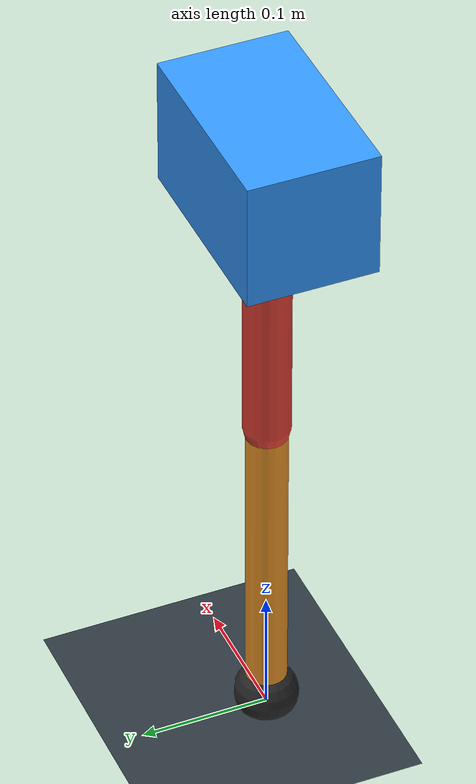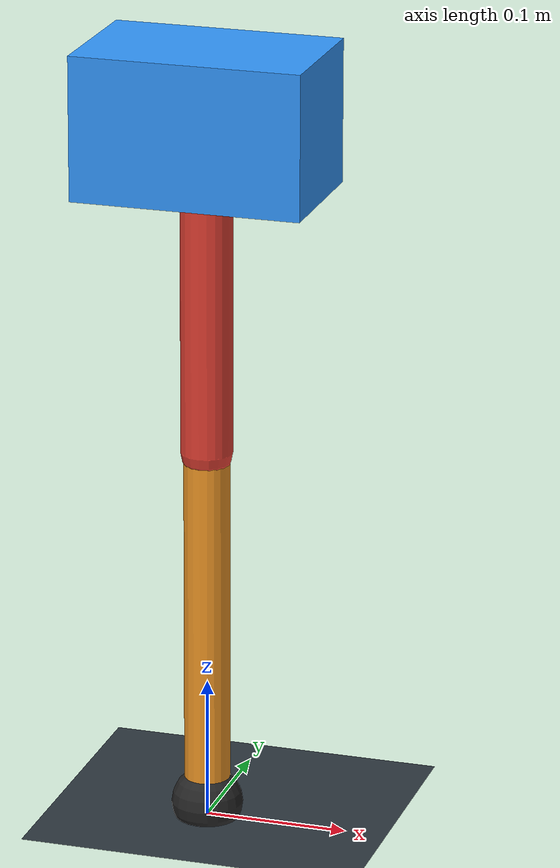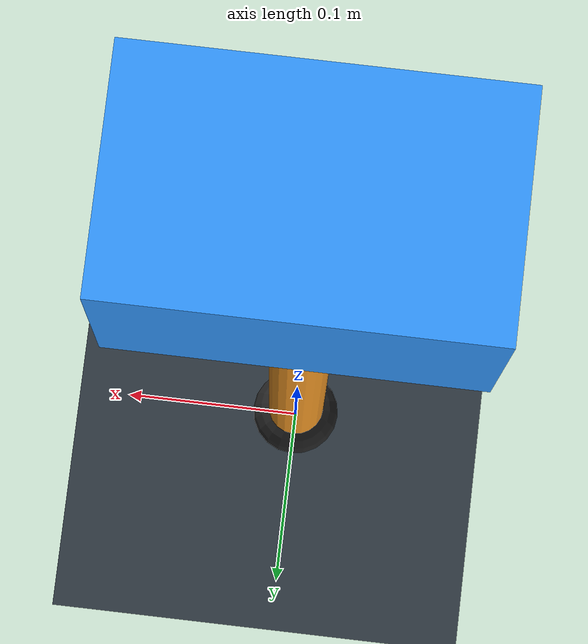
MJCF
<mujoco model="single_axis_two_bar">
  <compiler angle="radian" inertiafromgeom="true"/>
  <option timestep="0.001" integrator="implicitfast" gravity="0 0 -9.81"/>
  <default>
    <joint damping="0.08"/>
    <geom friction="1.2 0.01 0.0001" condim="3"/>
  </default>
  <worldbody>
    <geom name="floor" type="plane" size="5 5 0.1" rgba="0.18 0.22 0.25 1"/>
    <body name="carriage" pos="0 0 0.5029515049212709">
      <joint name="pole_slide" type="slide" axis="0 0 1"/>
      <geom name="payload" type="box" size="0.08 0.05 0.05" mass="3.1322426838175437" rgba="0.2 0.6 1 1"/>
      <body name="thigh" pos="0 0 0">
        <joint name="hip" type="hinge" axis="0 1 0"/>
        <geom name="thigh_link" type="capsule" fromto="0 0 0 0 0 -0.23465654140739917" size="0.018" mass="0.16719588646539582" rgba="0.9 0.25 0.2 1"/>
        <body name="shank" pos="0 0 -0.23465654140739917">
          <joint name="knee" type="hinge" axis="0 1 0"/>
          <geom name="shank_link" type="capsule" fromto="0 0 0 0 0 -0.2580769688207152" size="0.016" mass="0.18388325047102735" rgba="0.95 0.6 0.15 1"/>
          <geom name="foot" type="sphere" pos="0 0 -0.2580769688207152" size="0.025" mass="0.03" rgba="0.15 0.15 0.15 1"/>
          <site name="toe" pos="0 0 -0.2580769688207152" size="0.008"/>
        </body>
      </body>
    </body>
  </worldbody>
  <actuator>
    <motor name="hip_motor" joint="hip" ctrlrange="-70.80945239984722 70.80945239984722"/>
    <motor name="knee_motor" joint="knee" ctrlrange="-54.27021940790113 54.27021940790113"/>
  </actuator>
</mujoco>
